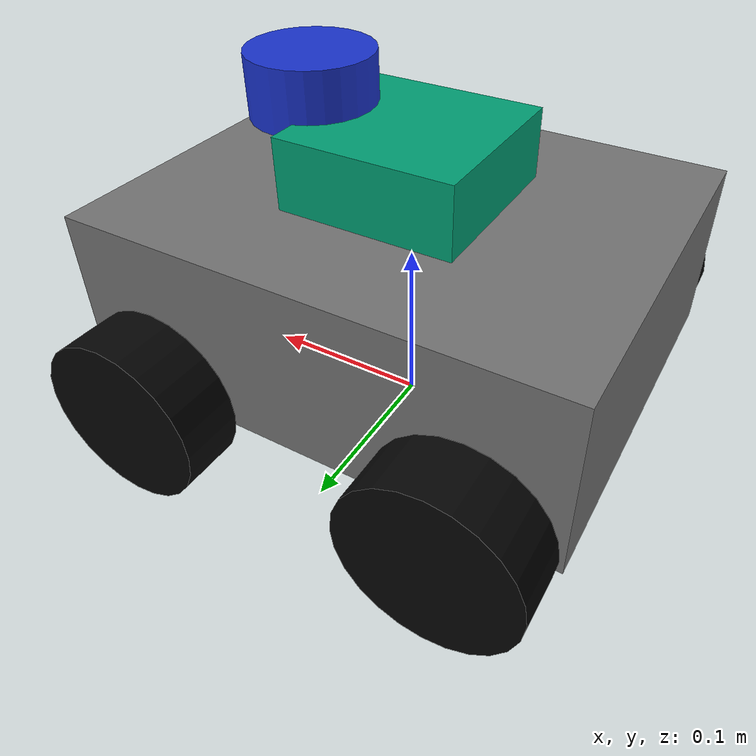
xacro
<?xml version="1.0"?>
<!-- THE single robot description entry point for Buddy v0.1.
     RViz, Gazebo, and (optionally) ros2_control all build from this file.
     Geometry lives in buddy_params.xacro. -->
<robot xmlns:xacro="http://www.ros.org/wiki/xacro" name="buddy">
  <!-- Build switches -->
  <xacro:arg name="use_gazebo" default="true"/>       <!-- emit gz plugins + sensors -->
  <xacro:arg name="use_ros2_control" default="false"/> <!-- emit ros2_control (real hardware) -->

  <xacro:property name="use_gazebo" value="$(arg use_gazebo)"/>
  <xacro:property name="use_ros2_control" value="$(arg use_ros2_control)"/>

  <xacro:include filename="$(find buddy_description)/urdf/buddy_params.xacro"/>
  <xacro:include filename="$(find buddy_description)/urdf/base_four_wheel_diff.urdf.xacro"/>
  <xacro:include filename="$(find buddy_description)/urdf/sensors_rgbd_2d_lidar.urdf.xacro"/>
  <xacro:include filename="$(find buddy_description)/urdf/arm_placeholder.urdf.xacro"/>
  <xacro:include filename="$(find buddy_description)/urdf/buddy.gazebo.xacro"/>
  <xacro:include filename="$(find buddy_description)/urdf/ros2_control_four_wheel_base.xacro"/>

  <xacro:buddy_base/>
  <xacro:buddy_sensors/>
  <xacro:buddy_arm_placeholder/>

  <xacro:if value="${use_gazebo}">
    <xacro:buddy_gazebo/>
  </xacro:if>

  <xacro:if value="${use_ros2_control}">
    <xacro:buddy_ros2_control/>
  </xacro:if>
</robot>

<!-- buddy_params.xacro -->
<robot xmlns:xacro="http://www.ros.org/wiki/xacro">
  <!-- Body box -->
  <xacro:property name="base_length" value="0.28"/>
  <xacro:property name="base_width"  value="0.22"/>
  <xacro:property name="base_height" value="0.1"/>
  <xacro:property name="base_mass"   value="18"/>

  <xacro:property name="measured_inertia" value="false"/>
  <xacro:property name="com_x" value="0"/>
  <xacro:property name="com_y" value="0"/>
  <xacro:property name="com_z" value="0"/>
  <xacro:property name="base_ixx" value="0"/>
  <xacro:property name="base_iyy" value="0"/>
  <xacro:property name="base_izz" value="0"/>
  <xacro:property name="base_ixy" value="0"/>
  <xacro:property name="base_ixz" value="0"/>
  <xacro:property name="base_iyz" value="0"/>

  <xacro:property name="base_center_z" value="0.088"/>

  <!-- Wheels: goBILDA 3626-0014-0096 Hogback (96 mm, 50A) -->
  <xacro:property name="wheel_radius" value="0.048"/>
  <xacro:property name="wheel_width"  value="0.035"/>
  <xacro:property name="wheel_mass"   value="0.2"/>
  <xacro:property name="wheel_x"      value="0.09"/>   <!-- +/- from center, fore/aft -->
  <xacro:property name="wheel_y"      value="0.13"/>   <!-- +/- from center, left/right (track/2) -->
  <xacro:property name="wheel_z"      value="-0.04"/>  <!-- wheel center relative to base_link -->

  <!-- Derived: kept as one expression so it can never drift from wheel_y -->
  <xacro:property name="wheel_separation" value="${2.0 * wheel_y}"/>
</robot>

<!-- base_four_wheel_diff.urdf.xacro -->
<robot xmlns:xacro="http://www.ros.org/wiki/xacro">
  <!-- Solid-box inertia helper -->
  <xacro:macro name="box_inertia" params="m x y z">
    <inertial>
      <mass value="${m}"/>
      <inertia
        ixx="${(1.0/12.0)*m*(y*y + z*z)}" ixy="0.0" ixz="0.0"
        iyy="${(1.0/12.0)*m*(x*x + z*z)}" iyz="0.0"
        izz="${(1.0/12.0)*m*(x*x + y*y)}"/>
    </inertial>
  </xacro:macro>

  <xacro:macro name="buddy_base">
    <link name="base_footprint"/>

    <joint name="base_footprint_joint" type="fixed">
      <parent link="base_footprint"/>
      <child link="base_link"/>
      <origin xyz="0 0 ${base_center_z}" rpy="0 0 0"/>
    </joint>

    <link name="base_link">
      <visual>
        <geometry><box size="${base_length} ${base_width} ${base_height}"/></geometry>
        <material name="body_gray"><color rgba="0.45 0.45 0.45 1"/></material>
      </visual>
      <collision>
        <geometry><box size="${base_length} ${base_width} ${base_height}"/></geometry>
      </collision>
      <xacro:unless value="${measured_inertia}">
        <xacro:box_inertia m="${base_mass}" x="${base_length}" y="${base_width}" z="${base_height}"/>
      </xacro:unless>
      <xacro:if value="${measured_inertia}">
        <inertial>
          <origin xyz="${com_x} ${com_y} ${com_z}" rpy="0 0 0"/>
          <mass value="${base_mass}"/>
          <inertia ixx="${base_ixx}" ixy="${base_ixy}" ixz="${base_ixz}"
                   iyy="${base_iyy}" iyz="${base_iyz}" izz="${base_izz}"/>
        </inertial>
      </xacro:if>
    </link>

    <!-- Wheel macro: cylinder about Y axis, inertia from wheel_mass/radius/width -->
    <xacro:macro name="wheel" params="name x y">
      <link name="${name}_link">
        <visual>
          <origin rpy="1.57079632679 0 0" xyz="0 0 0"/>
          <geometry><cylinder radius="${wheel_radius}" length="${wheel_width}"/></geometry>
          <material name="wheel_black"><color rgba="0.02 0.02 0.02 1"/></material>
        </visual>
        <collision>
          <origin rpy="1.57079632679 0 0" xyz="0 0 0"/>
          <geometry><cylinder radius="${wheel_radius}" length="${wheel_width}"/></geometry>
        </collision>
        <inertial>
          <mass value="${wheel_mass}"/>
          <inertia
            ixx="${(1.0/12.0)*wheel_mass*(3.0*wheel_radius*wheel_radius + wheel_width*wheel_width)}" ixy="0" ixz="0"
            iyy="${0.5*wheel_mass*wheel_radius*wheel_radius}" iyz="0"
            izz="${(1.0/12.0)*wheel_mass*(3.0*wheel_radius*wheel_radius + wheel_width*wheel_width)}"/>
        </inertial>
      </link>
      <joint name="${name}_joint" type="continuous">
        <parent link="base_link"/>
        <child link="${name}_link"/>
        <origin xyz="${x} ${y} ${wheel_z}" rpy="0 0 0"/>
        <axis xyz="0 1 0"/>
      </joint>
    </xacro:macro>

    <xacro:wheel name="left_front_wheel"  x="${wheel_x}"  y="${wheel_y}"/>
    <xacro:wheel name="left_rear_wheel"   x="${-wheel_x}" y="${wheel_y}"/>
    <xacro:wheel name="right_front_wheel" x="${wheel_x}"  y="${-wheel_y}"/>
    <xacro:wheel name="right_rear_wheel"  x="${-wheel_x}" y="${-wheel_y}"/>
  </xacro:macro>
</robot>

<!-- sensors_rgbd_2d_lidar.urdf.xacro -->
<robot xmlns:xacro="http://www.ros.org/wiki/xacro">
  <xacro:macro name="buddy_sensors">
    <!-- 2D LiDAR on a short mast above the body. -->
    <link name="base_laser">
      <visual>
        <geometry><cylinder radius="0.035" length="0.035"/></geometry>
        <material name="sensor_blue"><color rgba="0.1 0.2 0.8 1"/></material>
      </visual>
    </link>
    <joint name="base_laser_joint" type="fixed">
      <parent link="base_link"/>
      <child link="base_laser"/>
      <origin xyz="0.06 0 0.10" rpy="0 0 0"/>
    </joint>

    <!-- RGB-D camera near the front face. -->
    <link name="front_camera_link">
      <visual>
        <geometry><box size="0.07 0.025 0.025"/></geometry>
        <material name="camera_green"><color rgba="0.0 0.5 0.2 1"/></material>
      </visual>
    </link>
    <joint name="front_camera_joint" type="fixed">
      <parent link="base_link"/>
      <child link="front_camera_link"/>
      <origin xyz="0.13 0 0.02" rpy="0 0 0"/>
    </joint>

    <link name="front_camera_optical_frame"/>
    <joint name="front_camera_optical_joint" type="fixed">
      <parent link="front_camera_link"/>
      <child link="front_camera_optical_frame"/>
      <!-- Optical convention: z forward, x right, y down. -->
      <origin xyz="0 0 0" rpy="-1.57079632679 0 -1.57079632679"/>
    </joint>

    <link name="imu_link">
      <visual><geometry><box size="0.03 0.02 0.01"/></geometry></visual>
    </link>
    <joint name="imu_joint" type="fixed">
      <parent link="base_link"/>
      <child link="imu_link"/>
      <origin xyz="0 0 0.0" rpy="0 0 0"/>
    </joint>
  </xacro:macro>
</robot>

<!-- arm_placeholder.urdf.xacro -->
<!-- PLACEHOLDER arm mount only. Replace with the selected arm model when chosen. -->
<robot xmlns:xacro="http://www.ros.org/wiki/xacro">
  <xacro:macro name="buddy_arm_placeholder">
    <link name="arm_base_link">
      <visual><geometry><box size="0.10 0.10 0.04"/></geometry></visual>
      <collision><geometry><box size="0.10 0.10 0.04"/></geometry></collision>
      <inertial>
        <mass value="0.5"/>
        <inertia ixx="0.001" ixy="0" ixz="0" iyy="0.001" iyz="0" izz="0.001"/>
      </inertial>
    </link>
    <joint name="arm_base_joint" type="fixed">
      <parent link="base_link"/>
      <child link="arm_base_link"/>
      <origin xyz="0.0 0 0.07" rpy="0 0 0"/>
    </joint>
  </xacro:macro>
</robot>
